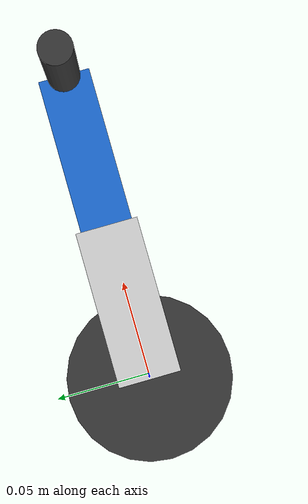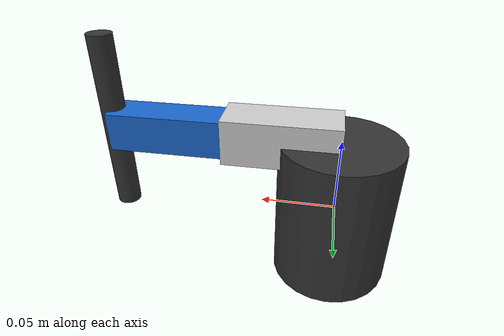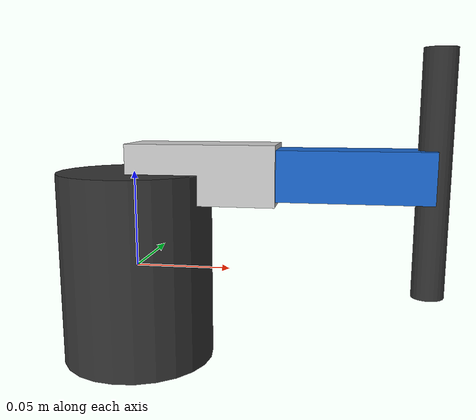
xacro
<?xml version="1.0"?>
<robot name="scara_300mm">

  <!-- Fixed Base Mount -->
  <link name="base_link">
    <visual>
      <geometry>
        <cylinder radius="0.04" length="0.1"/>
      </geometry>
      <material name="dark_grey">
        <color rgba="0.2 0.2 0.2 1"/>
      </material>
    </visual>
    <collision>
      <geometry>
        <cylinder radius="0.04" length="0.1"/>
      </geometry>
    </collision>
    <inertial>
      <mass value="2.0"/>
      <inertia ixx="0.002" ixy="0" ixz="0" iyy="0.002" iyz="0" izz="0.001"/>
    </inertial>
  </link>

  <!-- Link 1: Upper Arm (75mm structural length) -->
  <link name="arm_1">
    <visual>
      <!-- Center visual box over the 75mm span -->
      <origin xyz="0.0375 0 0" rpy="0 0 0"/>
      <geometry>
        <box size="0.075 0.03 0.03"/>
      </geometry>
      <material name="silver">
        <color rgba="0.8 0.8 0.8 1"/>
      </material>
    </visual>
    <collision>
      <origin xyz="0.0375 0 0" rpy="0 0 0"/>
      <geometry>
        <box size="0.075 0.03 0.03"/>
      </geometry>
    </collision>
    <inertial>
      <mass value="0.3"/>
      <inertia ixx="0.0001" ixy="0" ixz="0" iyy="0.0002" iyz="0" izz="0.0002"/>
    </inertial>
  </link>

  <!-- Joint 1: Shoulder (Rotates around Base Z) -->
  <joint name="joint_1" type="revolute">
    <parent link="base_link"/>
    <child link="arm_1"/>
    <origin xyz="0 0 0.05" rpy="0 0 0"/>
    <axis xyz="0 0 1"/>
    <limit lower="-2.09" upper="2.09" effort="10" velocity="2.0"/> <!-- +/- 120 deg -->
  </joint>

  <!-- Link 2: Forearm (75mm structural length) -->
  <link name="arm_2">
    <visual>
      <!-- Center visual box over the 75mm span -->
      <origin xyz="0.0375 0 0" rpy="0 0 0"/>
      <geometry>
        <box size="0.075 0.025 0.025"/>
      </geometry>
      <material name="blue">
        <color rgba="0.1 0.4 0.8 1"/>
      </material>
    </visual>
    <collision>
      <origin xyz="0.0375 0 0" rpy="0 0 0"/>
      <geometry>
        <box size="0.075 0.025 0.025"/>
      </geometry>
    </collision>
    <inertial>
      <mass value="0.15"/>
      <inertia ixx="0.00003" ixy="0" ixz="0" iyy="0.00008" iyz="0" izz="0.00008"/>
    </inertial>
  </link>

  <!-- Joint 2: Elbow (Offset 75mm from Joint 1 along X) -->
  <joint name="joint_2" type="revolute">
    <parent link="arm_1"/>
    <child link="arm_2"/>
    <origin xyz="0.075 0 0" rpy="0 0 0"/>
    <axis xyz="0 0 1"/>
    <limit lower="-2.61" upper="2.61" effort="5" velocity="2.5"/> <!-- +/- 150 deg -->
  </joint>

  <!-- Link 3: Z-Axis Tool Quill (Prismatic) -->
  <link name="z_quill">
    <visual>
      <geometry>
        <cylinder radius="0.008" length="0.12"/>
      </geometry>
      <material name="dark_grey"/>
    </visual>
    <collision>
      <geometry>
        <cylinder radius="0.008" length="0.12"/>
      </geometry>
    </collision>
    <inertial>
      <mass value="0.08"/>
      <inertia ixx="0.00001" ixy="0" ixz="0" iyy="0.00001" iyz="0" izz="0.000002"/>
    </inertial>
  </link>

  <!-- Joint 3: Z Prismatic (Offset 75mm from Joint 2 along X) -->
  <joint name="joint_z" type="prismatic">
    <parent link="arm_2"/>
    <child link="z_quill"/>
    <origin xyz="0.075 0 0" rpy="0 0 0"/>
    <axis xyz="0 0 1"/>
    <limit lower="-0.05" upper="0.05" effort="15" velocity="0.3"/> <!-- 100mm stroke -->
  </joint>
    <gazebo>
    <plugin filename="libgz_ros2_control-system.so"
            name="gz_ros2_control::GazeboSimROS2ControlPlugin">
      <parameters>
        $(find scara_pole_marker_moveit_config)/config/ros2_controllers.yaml
      </parameters>
    </plugin>
  </gazebo>

<ros2_control name="SCARA_SimSystem" type="system">
  <hardware>
    <plugin>gz_ros2_control/GazeboSimSystem</plugin>
  </hardware>

  <joint name="joint_1">
    <command_interface name="position"/>
    <state_interface name="position"/>
    <state_interface name="velocity"/>
  </joint>

  <joint name="joint_2">
    <command_interface name="position"/>
    <state_interface name="position"/>
    <state_interface name="velocity"/>
  </joint>

  <joint name="joint_z">
    <command_interface name="position"/>
    <state_interface name="position"/>
    <state_interface name="velocity"/>
  </joint>
</ros2_control>

</robot>
